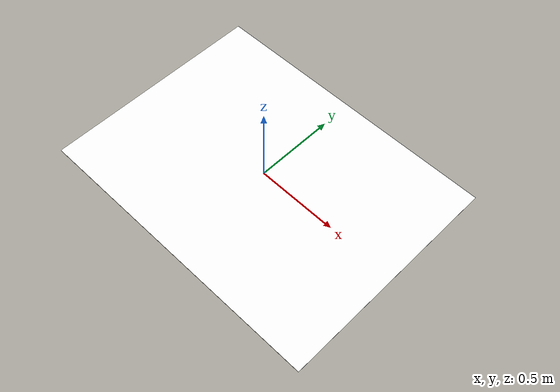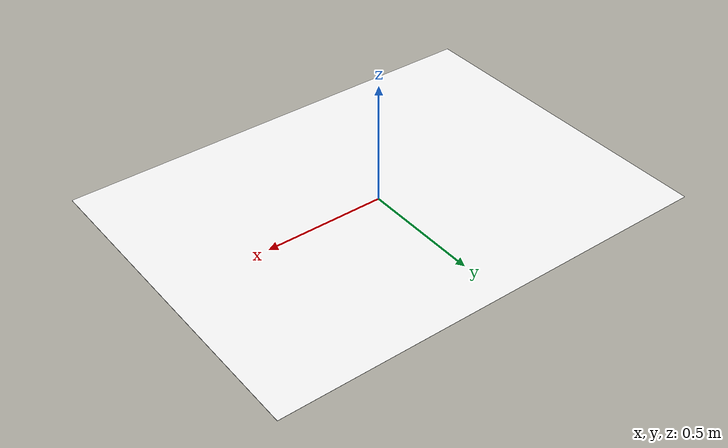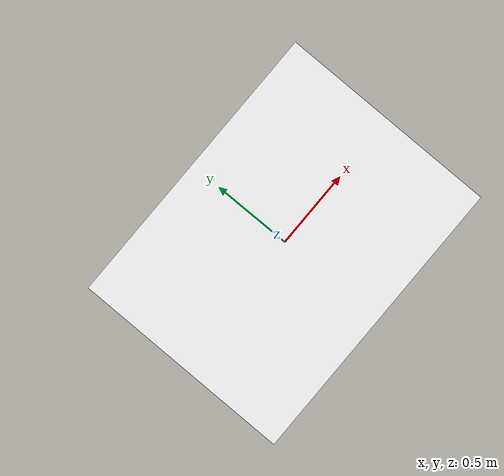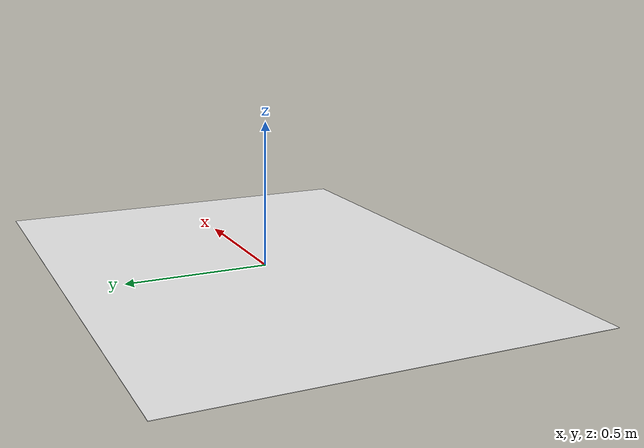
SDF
<?xml version="1.0"?>
<sdf version="1.9">
  <model name="minicity_floor">
    <static>true</static>
    <link name="floor_link">
      <collision name="floor_collision">
        <geometry>
          <plane>
            <normal>0 0 1</normal>
            <size>1.860 1.400</size>
          </plane>
        </geometry>
      </collision>

      <visual name="floor_visual">
        <geometry>
          <plane>
            <normal>0 0 1</normal>
            <size>1.860 1.400</size>
          </plane>
        </geometry>
        <material>
          <ambient>1 1 1 1</ambient>
          <diffuse>1 1 1 1</diffuse>
          <specular>0.05 0.05 0.05 1</specular>
          <pbr>
            <metal>
              <albedo_map>model://minicity_floor/materials/minicity_texture.png</albedo_map>
              <roughness>1.0</roughness>
              <metalness>0.0</metalness>
            </metal>
          </pbr>
        </material>
      </visual>
    </link>
  </model>
</sdf>
